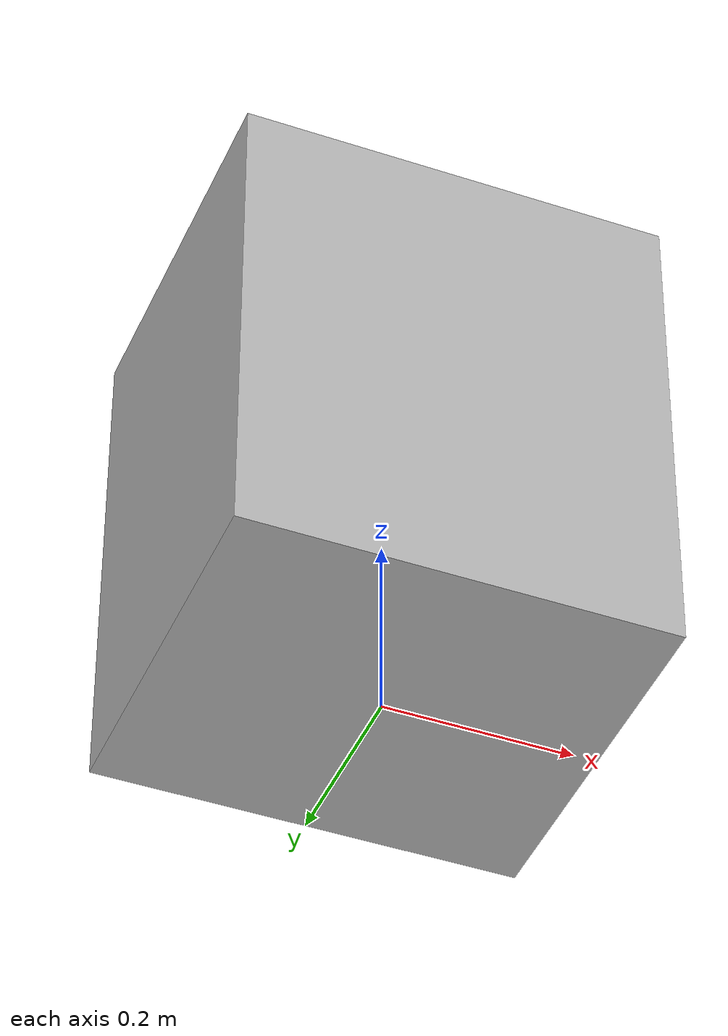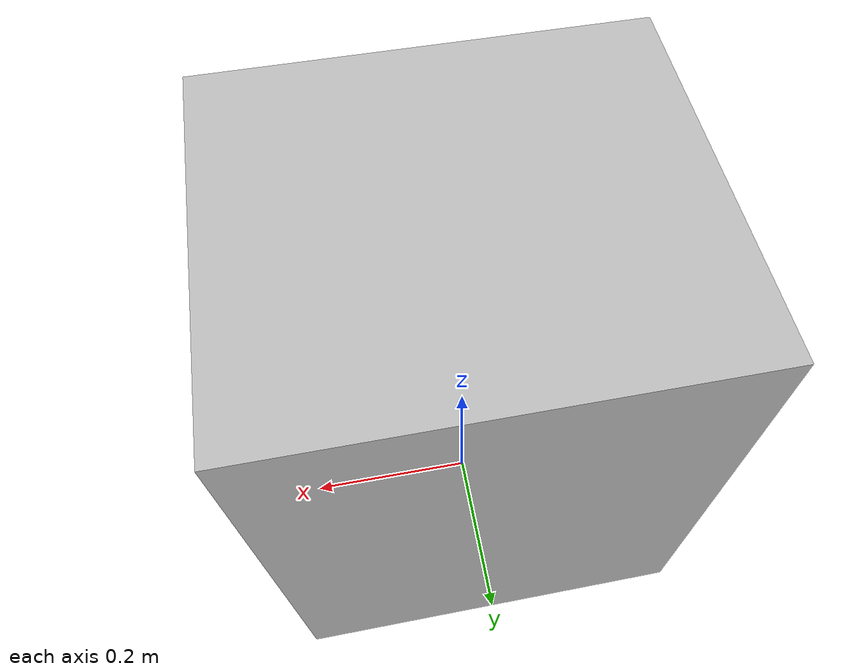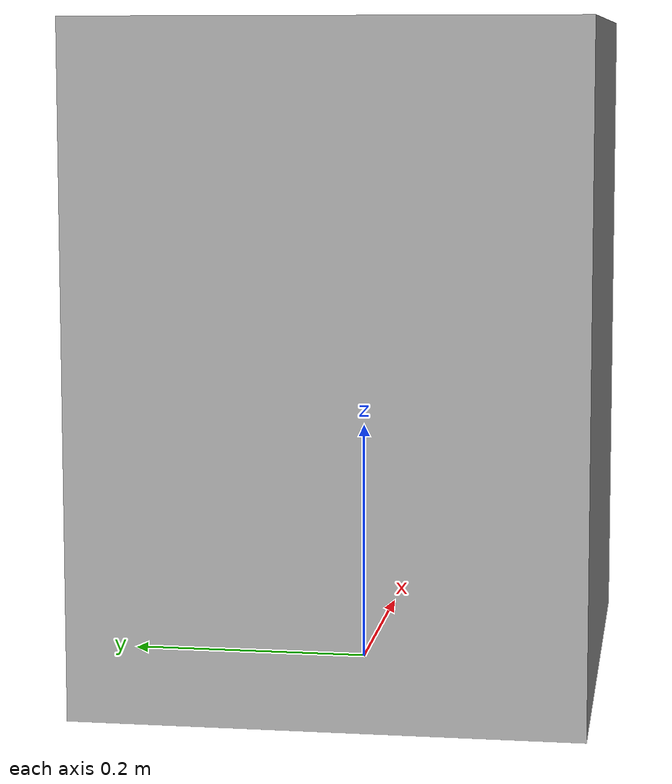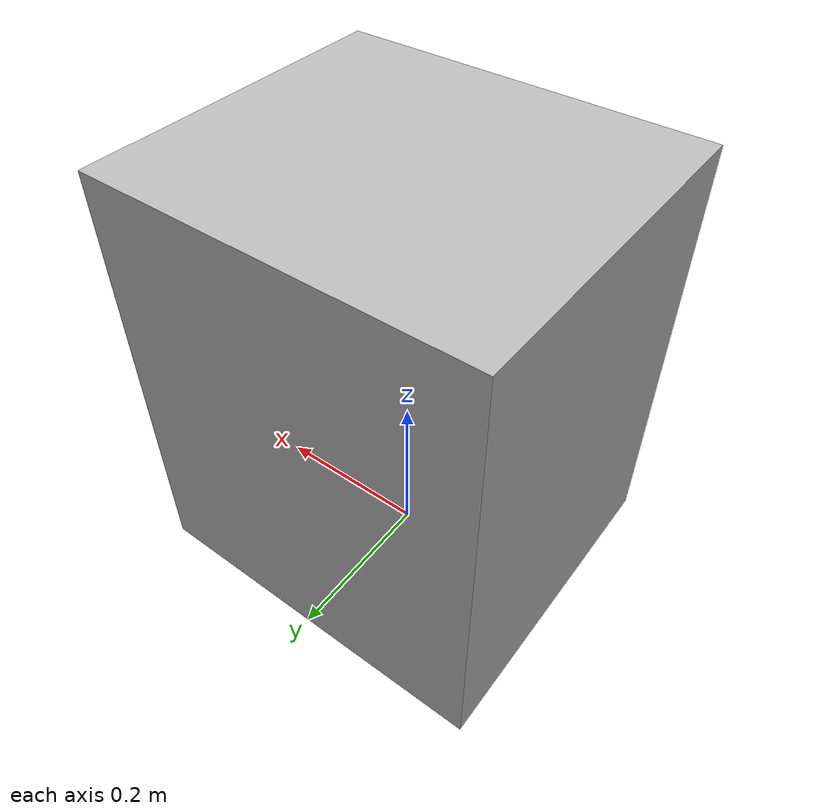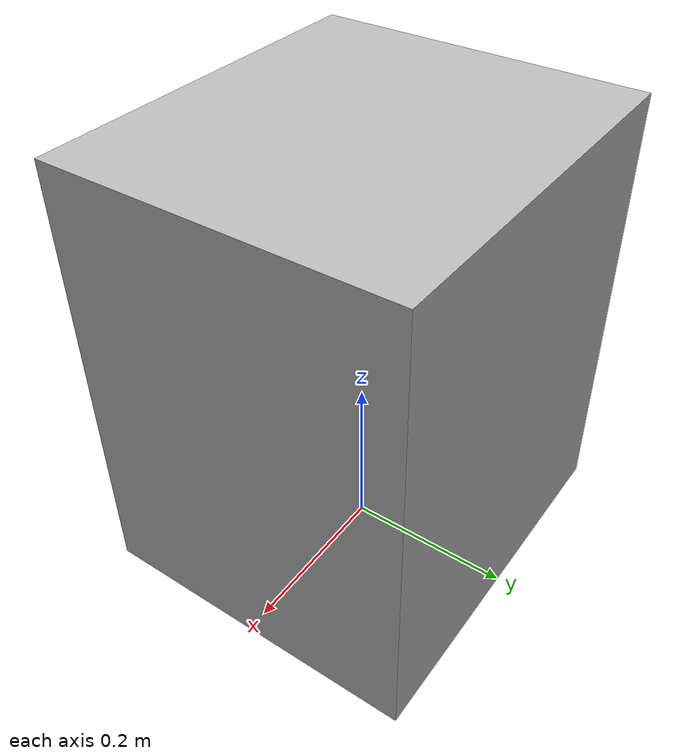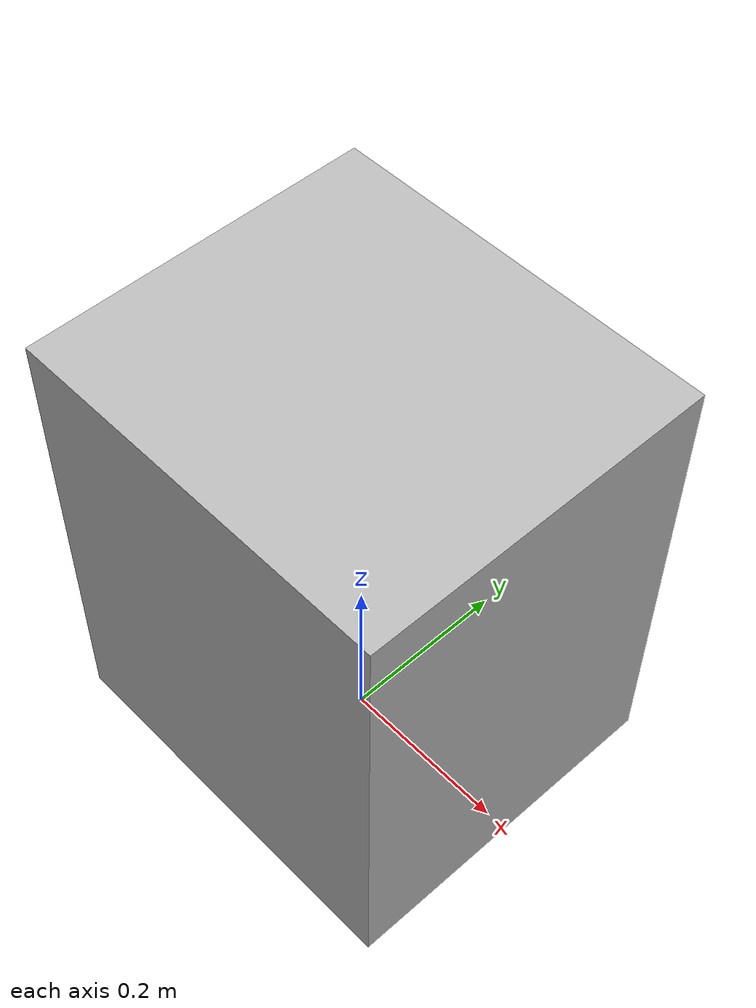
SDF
<?xml version="1.0"?>
<sdf version="1.6">
  <model name="reo2016/nightstand">
    <link name="1_link">
      <collision name="1_col">
        <geometry>
          <box>
            <size>0.45 0.4 0.54</size>
          </box>
        </geometry>
      </collision>
      <visual name="1_vis">
        <geometry>
          <box>
            <size>0.45 0.4 0.54</size>
          </box>
        </geometry>
      </visual>
      <pose>0.0 0.0 0.27 0 0 0</pose>
    </link>
    <link name="on_top_of">
      <virtual_volume name="on_top_of_vv">
        <geometry>
          <box>
            <size>0.45 0.4 0.25</size>
          </box>
        </geometry>
        <pose>0.0 0.0 0.705 0 0 0</pose>
      </virtual_volume>
    </link>
    <link name="in_front_of">
      <virtual_volume name="in_front_of_vv">
        <geometry>
          <box>
            <size>0.2 0.4 0.01</size>
          </box>
        </geometry>
        <pose>-0.925 0.0 0.005 0 0 0</pose>
      </virtual_volume>
    </link>
    <static>true</static>
  </model>
</sdf>
